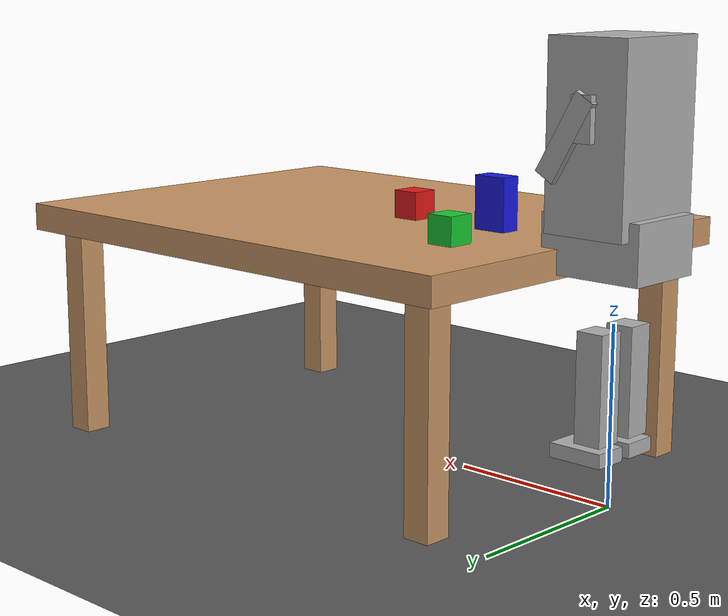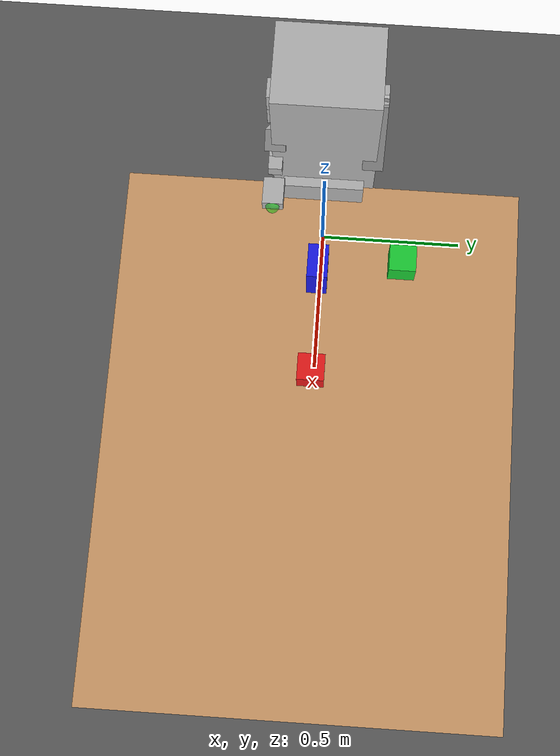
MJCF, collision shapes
<mujoco model="g1_table_box_scene_mjx">
  <compiler angle="radian"
            meshdir="assets/"
            texturedir="assets/"/>

  <option timestep="0.002" integrator="RK4" gravity="0 0 -9.81"/>

  <!-- Simplified G1 model for MJX compatibility -->
  <!-- Uses boxes instead of meshes for collision -->

  <asset>
    <material name="table_wood" rgba="0.8 0.6 0.4 1" shininess="0.5"/>
    <material name="box_red" rgba="0.9 0.1 0.1 1" shininess="0.3"/>
    <material name="cylinder_blue" rgba="0.1 0.1 0.9 1" shininess="0.3"/>
    <material name="cone_green" rgba="0.1 0.8 0.2 1" shininess="0.3"/>
    <material name="robot_grey" rgba="0.7 0.7 0.7 1" shininess="0.3"/>

    <texture name="floor_tex" type="2d" builtin="checker" width="300" height="300"
             rgb1="0.3 0.3 0.3" rgb2="0.4 0.4 0.4"/>
    <material name="floor_mat" texture="floor_tex" texrepeat="12 12" reflectance="0.1"/>

    <!-- Load only visual meshes (no collision) -->
    <mesh file="pelvis.STL"/>
    <mesh file="torso_link_rev_1_0.STL"/>
    <mesh file="right_shoulder_pitch_link.STL"/>
    <mesh file="right_shoulder_roll_link.STL"/>
    <mesh file="right_shoulder_yaw_link.STL"/>
    <mesh file="right_elbow_link.STL"/>
    <mesh file="right_wrist_roll_link.STL"/>
    <mesh file="right_wrist_pitch_link.STL"/>
    <mesh file="right_wrist_yaw_link.STL"/>
  </asset>

  <default>
    <default class="g1">
      <joint armature="0.01" frictionloss="0.3"/>
      <geom condim="3" friction="0.9 0.005 0.0001"/>
    </default>
  </default>

  <worldbody>
    <geom name="floor" pos="0 0 0" size="5 5 0.1" type="plane" material="floor_mat"/>
    <light name="main_light" directional="true" ambient="0.3 0.3 0.3" diffuse="0.8 0.8 0.8"
           specular="0.3 0.3 0.3" castshadow="true" pos="1 1 4" dir="-0.3 -0.3 -1"/>

    <!-- Simplified table using only boxes (MJX compatible) -->
    <body name="table" pos="0.6 0 0">
      <geom name="table_top" type="box" size="0.8 0.6 0.04" pos="0.3 0 0.66" material="table_wood"/>
      <geom name="table_leg1" type="box" size="0.04 0.04 0.38" pos="1 0.5 0.28" material="table_wood"/>
      <geom name="table_leg2" type="box" size="0.04 0.04 0.38" pos="1 -0.5 0.28" material="table_wood"/>
      <geom name="table_leg3" type="box" size="0.04 0.04 0.38" pos="-0.4 0.5 0.28" material="table_wood"/>
      <geom name="table_leg4" type="box" size="0.04 0.04 0.38" pos="-0.4 -0.5 0.28" material="table_wood"/>
    </body>

    <!-- Target: Red box -->
    <body name="red_box" pos="0.7 0 0.74">
      <joint name="red_box_joint" type="free"/>
      <geom name="red_box_geom" type="box" size="0.04 0.04 0.04" material="box_red" mass="0.2"/>
      <site name="red_box_site" pos="0 0 0" size="0.02"/>
    </body>

    <!-- Other objects (optional, for visual interest) -->
    <body name="blue_box" pos="0.4 0 0.75">
      <joint name="blue_box_joint" type="free"/>
      <geom name="blue_box_geom" type="box" size="0.05 0.03 0.1" material="cylinder_blue" mass="0.2"/>
    </body>

    <body name="green_box" pos="0.35 0.25 0.74">
      <joint name="green_box_joint" type="free"/>
      <geom name="green_box_geom" type="box" size="0.04 0.04 0.04" material="cone_green" mass="0.2"/>
    </body>

    <!-- Simplified G1 Robot (box-based collision for MJX compatibility) -->
    <body name="pelvis" pos="0 0 0.793" childclass="g1">
      <freejoint name="floating_base_joint"/>

      <!-- Visual mesh -->
      <geom type="mesh" mesh="pelvis" contype="0" conaffinity="0" group="2" material="robot_grey"/>
      <!-- Collision box -->
      <geom name="pelvis_collision" type="box" size="0.15 0.12 0.08" pos="0 0 -0.08" rgba="0.7 0.7 0.7 0.3"/>

      <body name="torso_link" pos="0 0 0.05">
        <!-- Visual mesh -->
        <geom type="mesh" mesh="torso_link_rev_1_0" contype="0" conaffinity="0" group="2" material="robot_grey"/>
        <!-- Collision box -->
        <geom name="torso_collision" type="box" size="0.12 0.15 0.25" pos="0 0 0.15" rgba="0.7 0.7 0.7 0.3"/>

        <!-- Simplified right arm -->
        <body name="right_shoulder_pitch_link" pos="0 -0.1 0.25">
          <joint name="right_shoulder_pitch_joint" axis="0 1 0" range="-3.0892 2.6704" class="g1"/>
          <geom type="box" size="0.04 0.04 0.03" rgba="0.7 0.7 0.7 1"/>

          <body name="right_shoulder_roll_link" pos="0 -0.04 0">
            <joint name="right_shoulder_roll_joint" axis="1 0 0" range="-2.2515 1.5882" class="g1"/>
            <geom type="box" size="0.03 0.03 0.06" pos="0 0 -0.05" rgba="0.7 0.7 0.7 1"/>

            <body name="right_shoulder_yaw_link" pos="0 0 -0.1">
              <joint name="right_shoulder_yaw_joint" axis="0 0 1" range="-2.618 2.618" class="g1"/>
              <geom type="box" size="0.03 0.03 0.04" rgba="0.7 0.7 0.7 1"/>

              <body name="right_elbow_link" pos="0 0 -0.08">
                <joint name="right_elbow_joint" axis="0 1 0" range="-1.0472 2.0944" class="g1"/>
                <geom type="box" size="0.03 0.03 0.12" pos="0.05 0 -0.01" quat="0.966 0 0.259 0" rgba="0.7 0.7 0.7 1"/>

                <body name="right_wrist_roll_link" pos="0.1 0 -0.01">
                  <joint name="right_wrist_roll_joint" axis="1 0 0" range="-1.97222 1.97222" class="g1"/>
                  <geom type="box" size="0.02 0.02 0.02" rgba="0.7 0.7 0.7 1"/>

                  <body name="right_wrist_pitch_link" pos="0.038 0 0">
                    <joint name="right_wrist_pitch_joint" axis="0 1 0" range="-1.61443 1.61443" class="g1"/>
                    <geom type="box" size="0.02 0.02 0.02" rgba="0.7 0.7 0.7 1"/>

                    <body name="right_wrist_yaw_link" pos="0.046 0 0">
                      <joint name="right_wrist_yaw_joint" axis="0 0 1" range="-1.61443 1.61443" class="g1"/>
                      <geom type="box" size="0.04 0.03 0.02" pos="0.04 0 0" rgba="0.7 0.7 0.7 1"/>

                      <!-- Hand tracking site -->
                      <site name="right_hand_site" pos="0.08 0 0" size="0.02" rgba="0 1 0 0.5"/>
                    </body>
                  </body>
                </body>
              </body>
            </body>
          </body>
        </body>

        <!-- Simplified left arm (for balance) -->
        <body name="left_shoulder_pitch_link" pos="0 0.1 0.25">
          <joint name="left_shoulder_pitch_joint" axis="0 1 0" range="-3.0892 2.6704" class="g1"/>
          <geom type="box" size="0.04 0.04 0.03" rgba="0.7 0.7 0.7 1"/>

          <body name="left_shoulder_roll_link" pos="0 0.04 0">
            <joint name="left_shoulder_roll_joint" axis="1 0 0" range="-0.5236 2.9671" class="g1"/>
            <geom type="box" size="0.03 0.03 0.06" pos="0 0 -0.05" rgba="0.7 0.7 0.7 1"/>

            <body name="left_elbow_link" pos="0 0 -0.1">
              <joint name="left_elbow_joint" axis="0 1 0" range="-1.0472 2.0944" class="g1"/>
              <geom type="box" size="0.03 0.03 0.12" pos="0.05 0 0" quat="0.966 0 -0.259 0" rgba="0.7 0.7 0.7 1"/>
            </body>
          </body>
        </body>
      </body>

      <!-- Simplified right leg -->
      <body name="right_hip_pitch_link" pos="0 -0.065 -0.1">
        <joint name="right_hip_pitch_joint" axis="0 1 0" range="-2.5307 2.8798" class="g1"/>
        <geom type="box" size="0.04 0.04 0.03" rgba="0.7 0.7 0.7 1"/>

        <body name="right_knee_link" pos="0 0 -0.2">
          <joint name="right_knee_joint" axis="0 1 0" range="-0.087267 2.8798" class="g1"/>
          <geom type="box" size="0.04 0.04 0.15" pos="0 0 -0.15" rgba="0.7 0.7 0.7 1"/>

          <body name="right_ankle_link" pos="0 0 -0.3">
            <joint name="right_ankle_pitch_joint" axis="0 1 0" range="-0.87267 0.5236" class="g1"/>
            <geom type="box" size="0.08 0.05 0.02" pos="0.03 0 -0.03" rgba="0.7 0.7 0.7 1"/>
            <site name="right_foot" pos="0.03 0 -0.04"/>
          </body>
        </body>
      </body>

      <!-- Simplified left leg -->
      <body name="left_hip_pitch_link" pos="0 0.065 -0.1">
        <joint name="left_hip_pitch_joint" axis="0 1 0" range="-2.5307 2.8798" class="g1"/>
        <geom type="box" size="0.04 0.04 0.03" rgba="0.7 0.7 0.7 1"/>

        <body name="left_knee_link" pos="0 0 -0.2">
          <joint name="left_knee_joint" axis="0 1 0" range="-0.087267 2.8798" class="g1"/>
          <geom type="box" size="0.04 0.04 0.15" pos="0 0 -0.15" rgba="0.7 0.7 0.7 1"/>

          <body name="left_ankle_link" pos="0 0 -0.3">
            <joint name="left_ankle_pitch_joint" axis="0 1 0" range="-0.87267 0.5236" class="g1"/>
            <geom type="box" size="0.08 0.05 0.02" pos="0.03 0 -0.03" rgba="0.7 0.7 0.7 1"/>
            <site name="left_foot" pos="0.03 0 -0.04"/>
          </body>
        </body>
      </body>
    </body>
  </worldbody>

  <actuator>
    <!-- Right arm actuators -->
    <position name="right_shoulder_pitch" joint="right_shoulder_pitch_joint" kp="500" ctrlrange="-3.0892 2.6704"/>
    <position name="right_shoulder_roll" joint="right_shoulder_roll_joint" kp="500" ctrlrange="-2.2515 1.5882"/>
    <position name="right_shoulder_yaw" joint="right_shoulder_yaw_joint" kp="500" ctrlrange="-2.618 2.618"/>
    <position name="right_elbow" joint="right_elbow_joint" kp="500" ctrlrange="-1.0472 2.0944"/>
    <position name="right_wrist_roll" joint="right_wrist_roll_joint" kp="300" ctrlrange="-1.97222 1.97222"/>
    <position name="right_wrist_pitch" joint="right_wrist_pitch_joint" kp="300" ctrlrange="-1.61443 1.61443"/>
    <position name="right_wrist_yaw" joint="right_wrist_yaw_joint" kp="300" ctrlrange="-1.61443 1.61443"/>

    <!-- Left arm actuators (for balance) -->
    <position name="left_shoulder_pitch" joint="left_shoulder_pitch_joint" kp="500" ctrlrange="-3.0892 2.6704"/>
    <position name="left_shoulder_roll" joint="left_shoulder_roll_joint" kp="500" ctrlrange="-0.5236 2.9671"/>
    <position name="left_elbow" joint="left_elbow_joint" kp="500" ctrlrange="-1.0472 2.0944"/>

    <!-- Leg actuators -->
    <position name="right_hip_pitch" joint="right_hip_pitch_joint" kp="500" ctrlrange="-2.5307 2.8798"/>
    <position name="right_knee" joint="right_knee_joint" kp="500" ctrlrange="-0.087267 2.8798"/>
    <position name="right_ankle_pitch" joint="right_ankle_pitch_joint" kp="300" ctrlrange="-0.87267 0.5236"/>

    <position name="left_hip_pitch" joint="left_hip_pitch_joint" kp="500" ctrlrange="-2.5307 2.8798"/>
    <position name="left_knee" joint="left_knee_joint" kp="500" ctrlrange="-0.087267 2.8798"/>
    <position name="left_ankle_pitch" joint="left_ankle_pitch_joint" kp="300" ctrlrange="-0.87267 0.5236"/>
  </actuator>
</mujoco>
